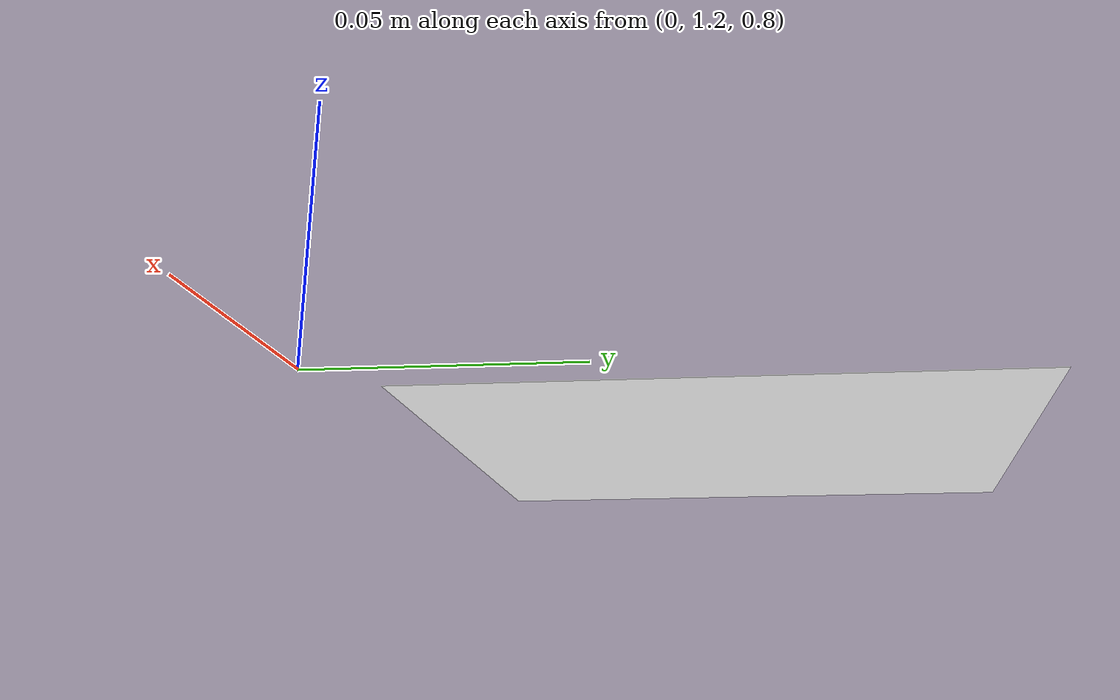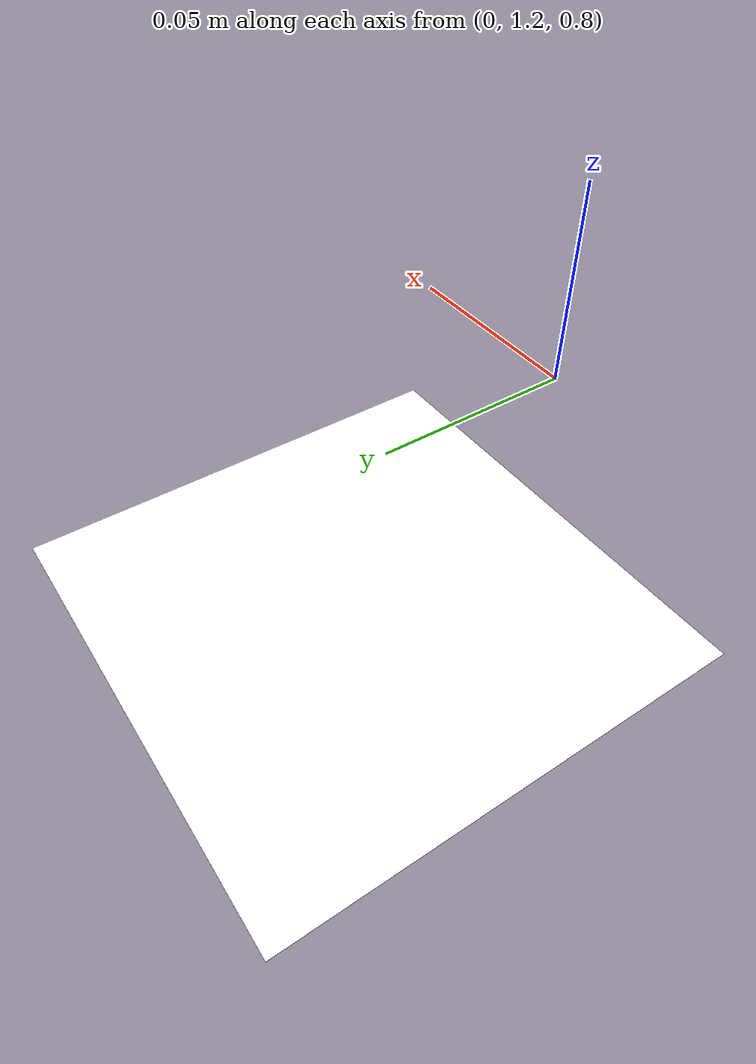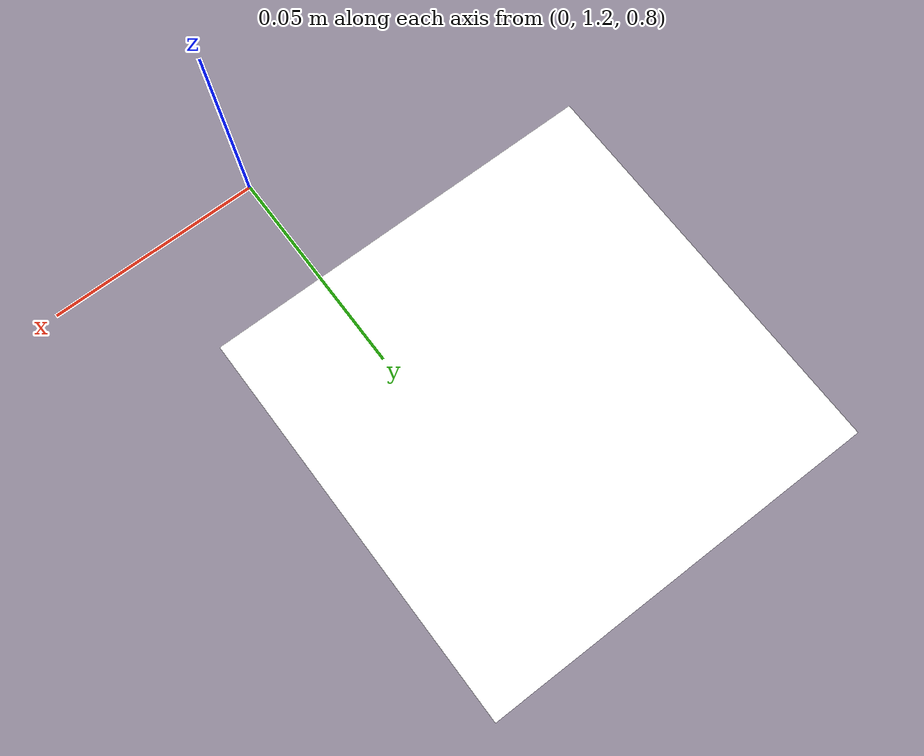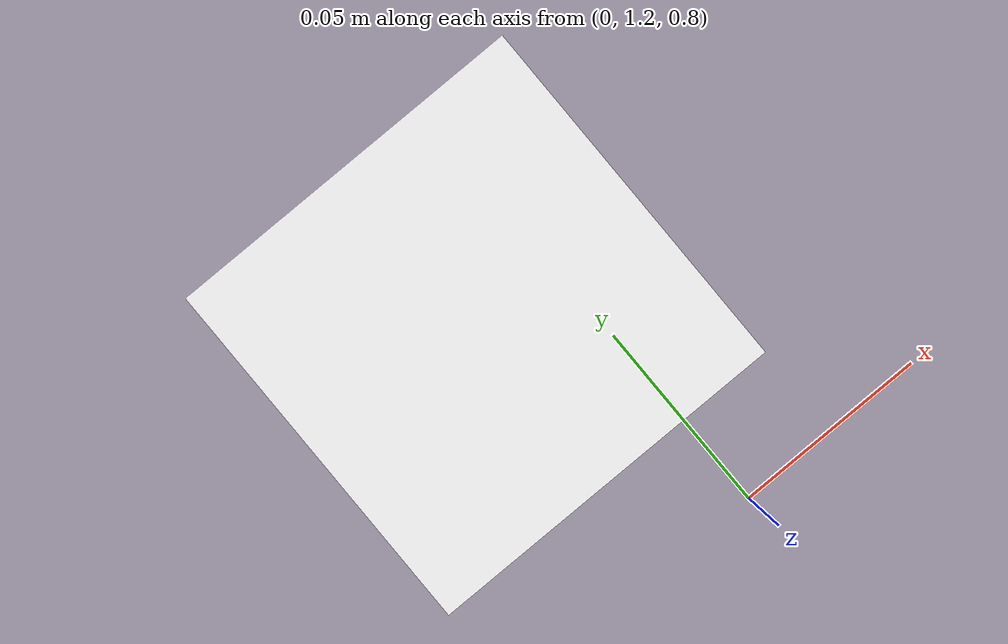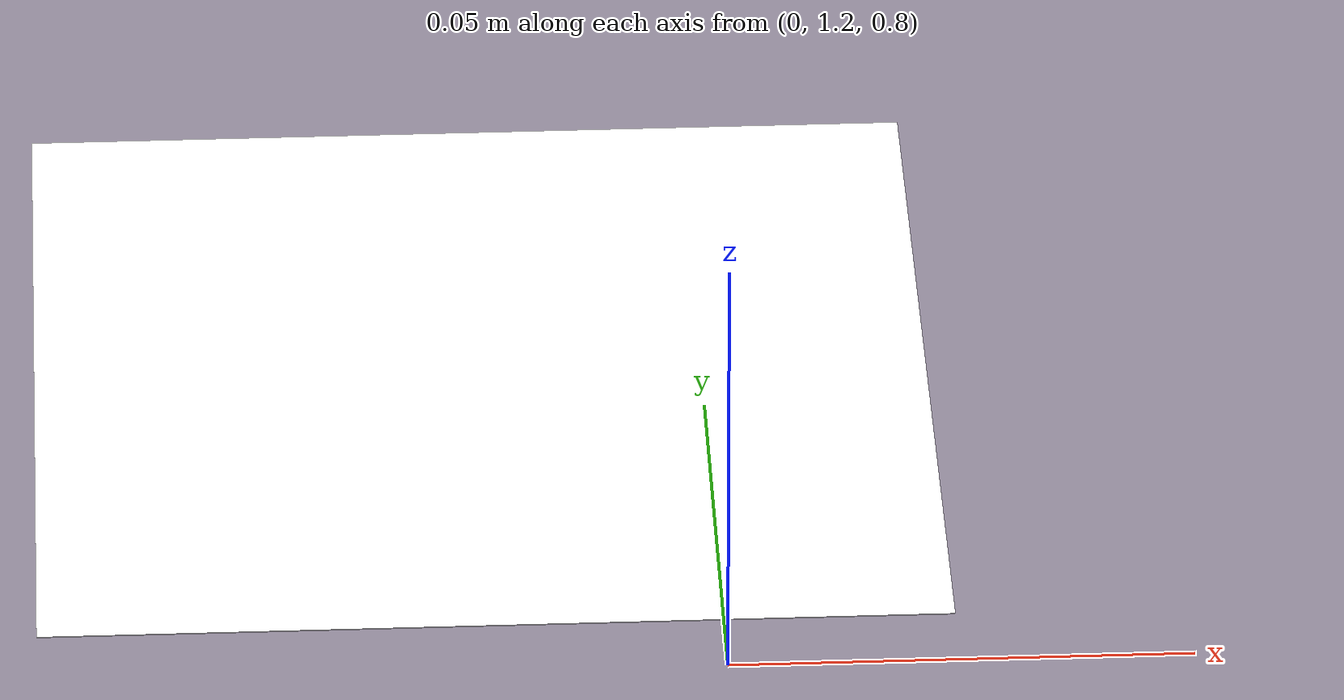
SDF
<?xml version="1.0"?>
<!-- AprilTag 36h11 ID 12 — Modelo para Gazebo Sim -->
<sdf version="1.9">
  <model name="apriltag_12">
    <!-- AprilTag 36h11 ID 12 — Posición calibrada: x=-0.024, y=1.273, z=0.279 m -->
    <pose>-0.024 1.273 0.79 0 0 0</pose>
    <static>true</static>
    <link name="tag_link">
      <visual name="tag_visual">
        <geometry>
          <plane>
            <normal>0 0 1</normal>
            <size>0.10 0.10</size>
          </plane>
        </geometry>
        <material>
          <diffuse>1 1 1 1</diffuse>
          <specular>0 0 0 1</specular>
          <pbr>
            <metal>
              <albedo_map>model://apriltags/textures/tag36_11_00012.png</albedo_map>
              <metalness>0.0</metalness>
              <roughness>1.0</roughness>
            </metal>
          </pbr>
        </material>
      </visual>
    </link>
  </model>
</sdf>
